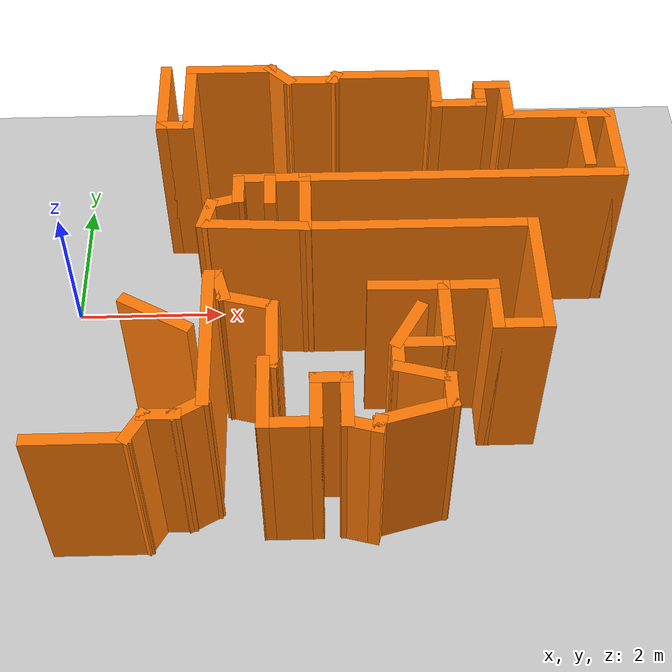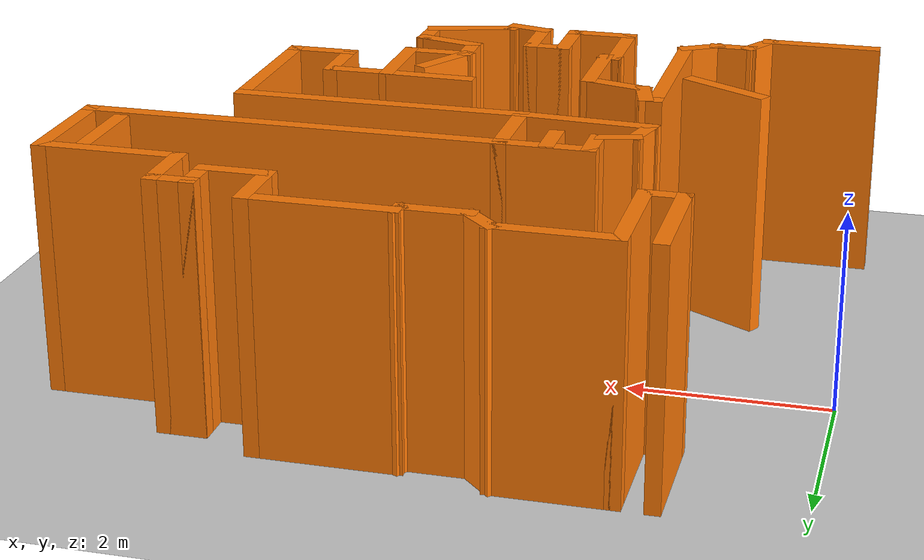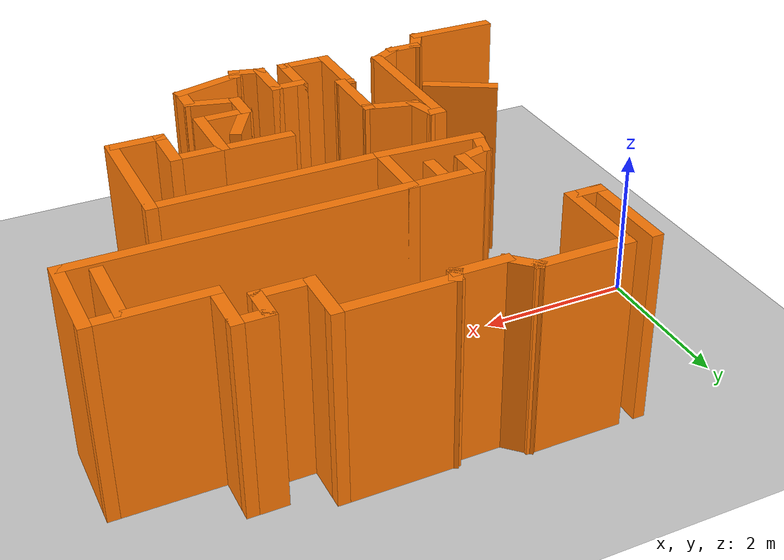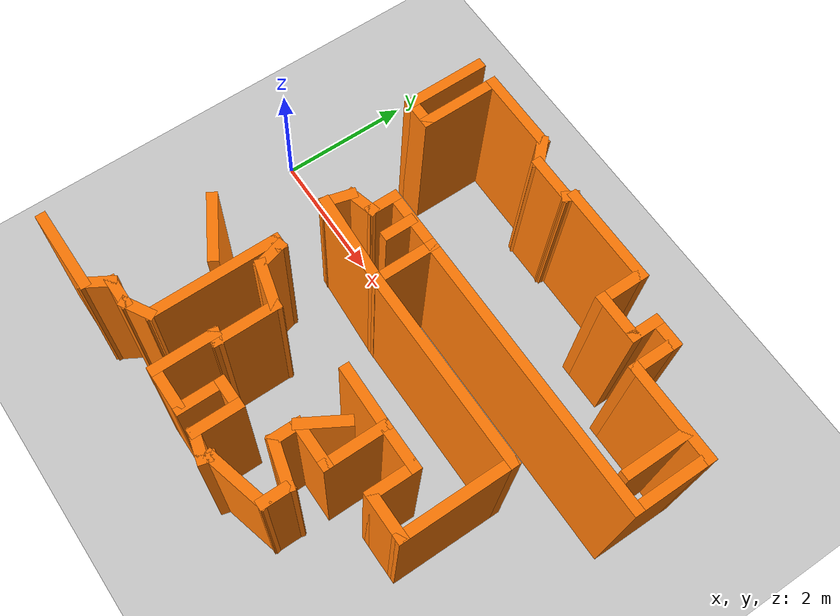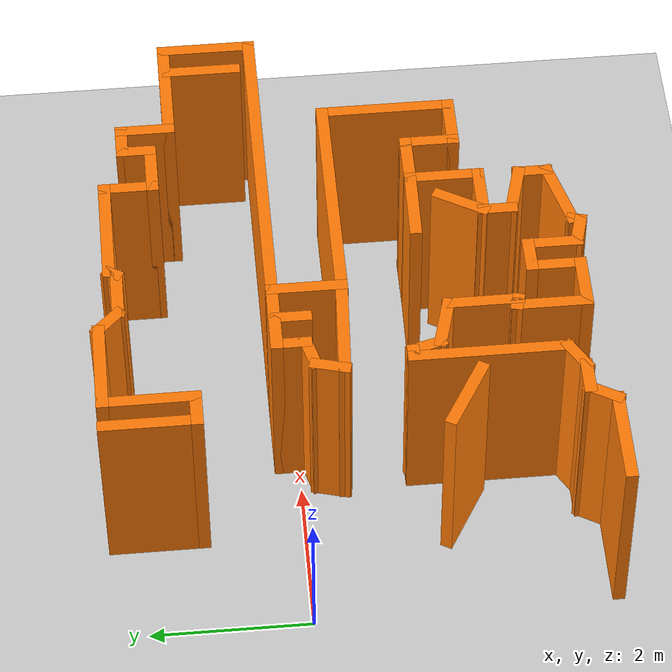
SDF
<sdf version="1.6">
 <world name="default">
  <model name="ground_plane">
   <static>1</static>
   <link name="link">
    <collision name="collision">
     <geometry><plane><normal>0 0 1</normal><size>100 100</size></plane></geometry>
     <surface>
      <contact><collide_bitmask>65535</collide_bitmask></contact>
      <friction><ode><mu>100</mu><mu2>50</mu2></ode></friction>
     </surface>
    </collision>
    <visual name="visual">
     <cast_shadows>0</cast_shadows>
     <geometry><plane><normal>0 0 1</normal><size>100 100</size></plane></geometry>
     <material>
      <script><uri>file://media/materials/scripts/gazebo.material</uri><name>Gazebo/Grey</name></script>
     </material>
    </visual>
   </link>
  </model>
  <model name="map_27">
   <pose>0.519139 -0.186386 0 0 -0 0</pose>
   <link name="Wall_100">
    <collision name="Wall_100_Collision">
     <geometry><box><size>0.75 0.15 2.5</size></box></geometry>
     <pose>0 0 1.25 0 -0 0</pose>
    </collision>
    <visual name="Wall_100_Visual">
     <pose>0 0 1.25 0 -0 0</pose>
     <geometry><box><size>0.75 0.15 2.5</size></box></geometry>
     <material>
      <script><uri>file://media/materials/scripts/gazebo.material</uri><name>Gazebo/Grey</name></script>
      <ambient>0.996078 0.47451 0.0196078 1</ambient>
     </material>
     <meta><layer>0</layer></meta>
    </visual>
    <pose>4.04514 -2.2771 0 0 -0 0</pose>
   </link>
   <link name="Wall_101">
    <collision name="Wall_101_Collision">
     <geometry><box><size>1 0.15 2.5</size></box></geometry>
     <pose>0 0 1.25 0 -0 0</pose>
    </collision>
    <visual name="Wall_101_Visual">
     <pose>0 0 1.25 0 -0 0</pose>
     <geometry><box><size>1 0.15 2.5</size></box></geometry>
     <material>
      <script><uri>file://media/materials/scripts/gazebo.material</uri><name>Gazebo/Grey</name></script>
      <ambient>0.996078 0.47451 0.0196078 1</ambient>
     </material>
     <meta><layer>0</layer></meta>
    </visual>
    <pose>4.34514 -1.8521 0 0 -0 1.5708</pose>
   </link>
   <link name="Wall_102">
    <collision name="Wall_102_Collision">
     <geometry><box><size>0.75 0.15 2.5</size></box></geometry>
     <pose>0 0 1.25 0 -0 0</pose>
    </collision>
    <visual name="Wall_102_Visual">
     <pose>0 0 1.25 0 -0 0</pose>
     <geometry><box><size>0.75 0.15 2.5</size></box></geometry>
     <material>
      <script><uri>file://media/materials/scripts/gazebo.material</uri><name>Gazebo/Grey</name></script>
      <ambient>0.996078 0.47451 0.0196078 1</ambient>
     </material>
     <meta><layer>0</layer></meta>
    </visual>
    <pose>4.64514 -1.4271 0 0 -0 0</pose>
   </link>
   <link name="Wall_103">
    <collision name="Wall_103_Collision">
     <geometry><box><size>0.75 0.15 2.5</size></box></geometry>
     <pose>0 0 1.25 0 -0 0</pose>
    </collision>
    <visual name="Wall_103_Visual">
     <pose>0 0 1.25 0 -0 0</pose>
     <geometry><box><size>0.75 0.15 2.5</size></box></geometry>
     <material>
      <script><uri>file://media/materials/scripts/gazebo.material</uri><name>Gazebo/Grey</name></script>
      <ambient>0.996078 0.47451 0.0196078 1</ambient>
     </material>
     <meta><layer>0</layer></meta>
    </visual>
    <pose>4.94514 -1.7271 0 0 -0 -1.5708</pose>
   </link>
   <link name="Wall_104">
    <collision name="Wall_104_Collision">
     <geometry><box><size>0.75 0.15 2.5</size></box></geometry>
     <pose>0 0 1.25 0 -0 0</pose>
    </collision>
    <visual name="Wall_104_Visual">
     <pose>0 0 1.25 0 -0 0</pose>
     <geometry><box><size>0.75 0.15 2.5</size></box></geometry>
     <material>
      <script><uri>file://media/materials/scripts/gazebo.material</uri><name>Gazebo/Grey</name></script>
      <ambient>0.996078 0.47451 0.0196078 1</ambient>
     </material>
     <meta><layer>0</layer></meta>
    </visual>
    <pose>5.24514 -2.0271 0 0 -0 0</pose>
   </link>
   <link name="Wall_105">
    <collision name="Wall_105_Collision">
     <geometry><box><size>1.75 0.15 2.5</size></box></geometry>
     <pose>0 0 1.25 0 -0 0</pose>
    </collision>
    <visual name="Wall_105_Visual">
     <pose>0 0 1.25 0 -0 0</pose>
     <geometry><box><size>1.75 0.15 2.5</size></box></geometry>
     <material>
      <script><uri>file://media/materials/scripts/gazebo.material</uri><name>Gazebo/Grey</name></script>
      <ambient>0.996078 0.47451 0.0196078 1</ambient>
     </material>
     <meta><layer>0</layer></meta>
    </visual>
    <pose>5.54514 -1.2271 0 0 -0 1.5708</pose>
   </link>
   <link name="Wall_106">
    <collision name="Wall_106_Collision">
     <geometry><box><size>3 0.15 2.5</size></box></geometry>
     <pose>0 0 1.25 0 -0 0</pose>
    </collision>
    <visual name="Wall_106_Visual">
     <pose>0 0 1.25 0 -0 0</pose>
     <geometry><box><size>3 0.15 2.5</size></box></geometry>
     <material>
      <script><uri>file://media/materials/scripts/gazebo.material</uri><name>Gazebo/Grey</name></script>
      <ambient>0.996078 0.47451 0.0196078 1</ambient>
     </material>
     <meta><layer>0</layer></meta>
    </visual>
    <pose>4.12014 -0.427096 0 0 -0 3.14159</pose>
   </link>
   <link name="Wall_107">
    <collision name="Wall_107_Collision">
     <geometry><box><size>1 0.15 2.5</size></box></geometry>
     <pose>0 0 1.25 0 -0 0</pose>
    </collision>
    <visual name="Wall_107_Visual">
     <pose>0 0 1.25 0 -0 0</pose>
     <geometry><box><size>1 0.15 2.5</size></box></geometry>
     <material>
      <script><uri>file://media/materials/scripts/gazebo.material</uri><name>Gazebo/Grey</name></script>
      <ambient>0.996078 0.47451 0.0196078 1</ambient>
     </material>
     <meta><layer>0</layer></meta>
    </visual>
    <pose>2.69514 -0.002096 0 0 -0 1.5708</pose>
   </link>
   <link name="Wall_108">
    <collision name="Wall_108_Collision">
     <geometry><box><size>4.25 0.15 2.5</size></box></geometry>
     <pose>0 0 1.25 0 -0 0</pose>
    </collision>
    <visual name="Wall_108_Visual">
     <pose>0 0 1.25 0 -0 0</pose>
     <geometry><box><size>4.25 0.15 2.5</size></box></geometry>
     <material>
      <script><uri>file://media/materials/scripts/gazebo.material</uri><name>Gazebo/Grey</name></script>
      <ambient>0.996078 0.47451 0.0196078 1</ambient>
     </material>
     <meta><layer>0</layer></meta>
    </visual>
    <pose>4.74514 0.422904 0 0 -0 0</pose>
   </link>
   <link name="Wall_109">
    <collision name="Wall_109_Collision">
     <geometry><box><size>1.25 0.15 2.5</size></box></geometry>
     <pose>0 0 1.25 0 -0 0</pose>
    </collision>
    <visual name="Wall_109_Visual">
     <pose>0 0 1.25 0 -0 0</pose>
     <geometry><box><size>1.25 0.15 2.5</size></box></geometry>
     <material>
      <script><uri>file://media/materials/scripts/gazebo.material</uri><name>Gazebo/Grey</name></script>
      <ambient>0.996078 0.47451 0.0196078 1</ambient>
     </material>
     <meta><layer>0</layer></meta>
    </visual>
    <pose>6.79514 0.972904 0 0 -0 1.5708</pose>
   </link>
   <link name="Wall_110">
    <collision name="Wall_110_Collision">
     <geometry><box><size>1.5 0.15 2.5</size></box></geometry>
     <pose>0 0 1.25 0 -0 0</pose>
    </collision>
    <visual name="Wall_110_Visual">
     <pose>0 0 1.25 0 -0 0</pose>
     <geometry><box><size>1.5 0.15 2.5</size></box></geometry>
     <material>
      <script><uri>file://media/materials/scripts/gazebo.material</uri><name>Gazebo/Grey</name></script>
      <ambient>0.996078 0.47451 0.0196078 1</ambient>
     </material>
     <meta><layer>0</layer></meta>
    </visual>
    <pose>6.12014 1.5229 0 0 -0 3.14159</pose>
   </link>
   <link name="Wall_111">
    <collision name="Wall_111_Collision">
     <geometry><box><size>0.75 0.15 2.5</size></box></geometry>
     <pose>0 0 1.25 0 -0 0</pose>
    </collision>
    <visual name="Wall_111_Visual">
     <pose>0 0 1.25 0 -0 0</pose>
     <geometry><box><size>0.75 0.15 2.5</size></box></geometry>
     <material>
      <script><uri>file://media/materials/scripts/gazebo.material</uri><name>Gazebo/Grey</name></script>
      <ambient>0.996078 0.47451 0.0196078 1</ambient>
     </material>
     <meta><layer>0</layer></meta>
    </visual>
    <pose>5.44514 1.8229 0 0 -0 1.5708</pose>
   </link>
   <link name="Wall_112">
    <collision name="Wall_112_Collision">
     <geometry><box><size>0.5 0.15 2.5</size></box></geometry>
     <pose>0 0 1.25 0 -0 0</pose>
    </collision>
    <visual name="Wall_112_Visual">
     <pose>0 0 1.25 0 -0 0</pose>
     <geometry><box><size>0.5 0.15 2.5</size></box></geometry>
     <material>
      <script><uri>file://media/materials/scripts/gazebo.material</uri><name>Gazebo/Grey</name></script>
      <ambient>0.996078 0.47451 0.0196078 1</ambient>
     </material>
     <meta><layer>0</layer></meta>
    </visual>
    <pose>5.27014 2.1229 0 0 -0 3.14159</pose>
   </link>
   <link name="Wall_113">
    <collision name="Wall_113_Collision">
     <geometry><box><size>0.5 0.15 2.5</size></box></geometry>
     <pose>0 0 1.25 0 -0 0</pose>
    </collision>
    <visual name="Wall_113_Visual">
     <pose>0 0 1.25 0 -0 0</pose>
     <geometry><box><size>0.5 0.15 2.5</size></box></geometry>
     <material>
      <script><uri>file://media/materials/scripts/gazebo.material</uri><name>Gazebo/Grey</name></script>
      <ambient>0.996078 0.47451 0.0196078 1</ambient>
     </material>
     <meta><layer>0</layer></meta>
    </visual>
    <pose>5.09514 1.9479 0 0 -0 -1.5708</pose>
   </link>
   <link name="Wall_114">
    <collision name="Wall_114_Collision">
     <geometry><box><size>0.75 0.15 2.5</size></box></geometry>
     <pose>0 0 1.25 0 -0 0</pose>
    </collision>
    <visual name="Wall_114_Visual">
     <pose>0 0 1.25 0 -0 0</pose>
     <geometry><box><size>0.75 0.15 2.5</size></box></geometry>
     <material>
      <script><uri>file://media/materials/scripts/gazebo.material</uri><name>Gazebo/Grey</name></script>
      <ambient>0.996078 0.47451 0.0196078 1</ambient>
     </material>
     <meta><layer>0</layer></meta>
    </visual>
    <pose>4.79514 1.7729 0 0 -0 3.14159</pose>
   </link>
   <link name="Wall_115">
    <collision name="Wall_115_Collision">
     <geometry><box><size>0.75 0.15 2.5</size></box></geometry>
     <pose>0 0 1.25 0 -0 0</pose>
    </collision>
    <visual name="Wall_115_Visual">
     <pose>0 0 1.25 0 -0 0</pose>
     <geometry><box><size>0.75 0.15 2.5</size></box></geometry>
     <material>
      <script><uri>file://media/materials/scripts/gazebo.material</uri><name>Gazebo/Grey</name></script>
      <ambient>0.996078 0.47451 0.0196078 1</ambient>
     </material>
     <meta><layer>0</layer></meta>
    </visual>
    <pose>4.49514 2.0729 0 0 -0 1.5708</pose>
   </link>
   <link name="Wall_116">
    <collision name="Wall_116_Collision">
     <geometry><box><size>1.5 0.15 2.5</size></box></geometry>
     <pose>0 0 1.25 0 -0 0</pose>
    </collision>
    <visual name="Wall_116_Visual">
     <pose>0 0 1.25 0 -0 0</pose>
     <geometry><box><size>1.5 0.15 2.5</size></box></geometry>
     <material>
      <script><uri>file://media/materials/scripts/gazebo.material</uri><name>Gazebo/Grey</name></script>
      <ambient>0.996078 0.47451 0.0196078 1</ambient>
     </material>
     <meta><layer>0</layer></meta>
    </visual>
    <pose>3.82014 2.3729 0 0 -0 3.14159</pose>
   </link>
   <link name="Wall_117">
    <collision name="Wall_117_Collision">
     <geometry><box><size>0.25 0.15 2.5</size></box></geometry>
     <pose>0 0 1.25 0 -0 0</pose>
    </collision>
    <visual name="Wall_117_Visual">
     <pose>0 0 1.25 0 -0 0</pose>
     <geometry><box><size>0.25 0.15 2.5</size></box></geometry>
     <material>
      <script><uri>file://media/materials/scripts/gazebo.material</uri><name>Gazebo/Grey</name></script>
      <ambient>0.996078 0.47451 0.0196078 1</ambient>
     </material>
     <meta><layer>0</layer></meta>
    </visual>
    <pose>3.12014 2.3296 0 0 -0 -2.0944</pose>
   </link>
   <link name="Wall_118">
    <collision name="Wall_118_Collision">
     <geometry><box><size>0.75 0.15 2.5</size></box></geometry>
     <pose>0 0 1.25 0 -0 0</pose>
    </collision>
    <visual name="Wall_118_Visual">
     <pose>0 0 1.25 0 -0 0</pose>
     <geometry><box><size>0.75 0.15 2.5</size></box></geometry>
     <material>
      <script><uri>file://media/materials/scripts/gazebo.material</uri><name>Gazebo/Grey</name></script>
      <ambient>0.996078 0.47451 0.0196078 1</ambient>
     </material>
     <meta><layer>0</layer></meta>
    </visual>
    <pose>2.79514 2.2863 0 0 -0 3.14159</pose>
   </link>
   <link name="Wall_119">
    <collision name="Wall_119_Collision">
     <geometry><box><size>0.5 0.15 2.5</size></box></geometry>
     <pose>0 0 1.25 0 -0 0</pose>
    </collision>
    <visual name="Wall_119_Visual">
     <pose>0 0 1.25 0 -0 0</pose>
     <geometry><box><size>0.5 0.15 2.5</size></box></geometry>
     <material>
      <script><uri>file://media/materials/scripts/gazebo.material</uri><name>Gazebo/Grey</name></script>
      <ambient>0.996078 0.47451 0.0196078 1</ambient>
     </material>
     <meta><layer>0</layer></meta>
    </visual>
    <pose>2.3714 2.41005 0 0 -0 2.35619</pose>
   </link>
   <link name="Wall_120">
    <collision name="Wall_120_Collision">
     <geometry><box><size>1.25 0.15 2.5</size></box></geometry>
     <pose>0 0 1.25 0 -0 0</pose>
    </collision>
    <visual name="Wall_120_Visual">
     <pose>0 0 1.25 0 -0 0</pose>
     <geometry><box><size>1.25 0.15 2.5</size></box></geometry>
     <material>
      <script><uri>file://media/materials/scripts/gazebo.material</uri><name>Gazebo/Grey</name></script>
      <ambient>0.996078 0.47451 0.0196078 1</ambient>
     </material>
     <meta><layer>0</layer></meta>
    </visual>
    <pose>1.69765 2.53379 0 0 -0 3.14159</pose>
   </link>
   <link name="Wall_121">
    <collision name="Wall_121_Collision">
     <geometry><box><size>1.25 0.15 2.5</size></box></geometry>
     <pose>0 0 1.25 0 -0 0</pose>
    </collision>
    <visual name="Wall_121_Visual">
     <pose>0 0 1.25 0 -0 0</pose>
     <geometry><box><size>1.25 0.15 2.5</size></box></geometry>
     <material>
      <script><uri>file://media/materials/scripts/gazebo.material</uri><name>Gazebo/Grey</name></script>
      <ambient>0.996078 0.47451 0.0196078 1</ambient>
     </material>
     <meta><layer>0</layer></meta>
    </visual>
    <pose>1.14766 1.98379 0 0 -0 -1.5708</pose>
   </link>
   <link name="Wall_122">
    <collision name="Wall_122_Collision">
     <geometry><box><size>0.5 0.15 2.5</size></box></geometry>
     <pose>0 0 1.25 0 -0 0</pose>
    </collision>
    <visual name="Wall_122_Visual">
     <pose>0 0 1.25 0 -0 0</pose>
     <geometry><box><size>0.5 0.15 2.5</size></box></geometry>
     <material>
      <script><uri>file://media/materials/scripts/gazebo.material</uri><name>Gazebo/Grey</name></script>
      <ambient>0.996078 0.47451 0.0196078 1</ambient>
     </material>
     <meta><layer>0</layer></meta>
    </visual>
    <pose>0.972655 1.43379 0 0 -0 3.14159</pose>
   </link>
   <link name="Wall_123">
    <collision name="Wall_123_Collision">
     <geometry><box><size>1.25 0.15 2.5</size></box></geometry>
     <pose>0 0 1.25 0 -0 0</pose>
    </collision>
    <visual name="Wall_123_Visual">
     <pose>0 0 1.25 0 -0 0</pose>
     <geometry><box><size>1.25 0.15 2.5</size></box></geometry>
     <material>
      <script><uri>file://media/materials/scripts/gazebo.material</uri><name>Gazebo/Grey</name></script>
      <ambient>0.996078 0.47451 0.0196078 1</ambient>
     </material>
     <meta><layer>0</layer></meta>
    </visual>
    <pose>0.797655 1.98379 0 0 -0 1.5708</pose>
   </link>
   <link name="Wall_135">
    <collision name="Wall_135_Collision">
     <geometry><box><size>1 0.15 2.5</size></box></geometry>
     <pose>0 0 1.25 0 -0 0</pose>
    </collision>
    <visual name="Wall_135_Visual">
     <pose>0 0 1.25 0 -0 0</pose>
     <geometry><box><size>1 0.15 2.5</size></box></geometry>
     <material>
      <script><uri>file://media/materials/scripts/gazebo.material</uri><name>Gazebo/Grey</name></script>
      <ambient>0.996078 0.47451 0.0196078 1</ambient>
     </material>
     <meta><layer>0</layer></meta>
    </visual>
    <pose>6.41297 1.05479 0 0 -0 -1.5708</pose>
   </link>
   <link name="Wall_138">
    <collision name="Wall_138_Collision">
     <geometry><box><size>1 0.15 2.5</size></box></geometry>
     <pose>0 0 1.25 0 -0 0</pose>
    </collision>
    <visual name="Wall_138_Visual">
     <pose>0 0 1.25 0 -0 0</pose>
     <geometry><box><size>1 0.15 2.5</size></box></geometry>
     <material>
      <script><uri>file://media/materials/scripts/gazebo.material</uri><name>Gazebo/Grey</name></script>
      <ambient>0.996078 0.47451 0.0196078 1</ambient>
     </material>
     <meta><layer>0</layer></meta>
    </visual>
    <pose>0.905858 -1.76282 0 0 -0 -0.523599</pose>
   </link>
   <link name="Wall_141">
    <collision name="Wall_141_Collision">
     <geometry><box><size>0.99677 0.15 2.5</size></box></geometry>
     <pose>0 0 1.25 0 -0 0</pose>
    </collision>
    <visual name="Wall_141_Visual">
     <pose>0 0 1.25 0 -0 0</pose>
     <geometry><box><size>0.99677 0.15 2.5</size></box></geometry>
     <material>
      <script><uri>file://media/materials/scripts/gazebo.material</uri><name>Gazebo/Grey</name></script>
      <ambient>0.996078 0.47451 0.0196078 1</ambient>
     </material>
     <meta><layer>0</layer></meta>
    </visual>
    <pose>3.92183 -1.41932 0 0 -0 -0.018375</pose>
   </link>
   <link name="Wall_143">
    <collision name="Wall_143_Collision">
     <geometry><box><size>0.75 0.15 2.5</size></box></geometry>
     <pose>0 0 1.25 0 -0 0</pose>
    </collision>
    <visual name="Wall_143_Visual">
     <pose>0 0 1.25 0 -0 0</pose>
     <geometry><box><size>0.75 0.15 2.5</size></box></geometry>
     <material>
      <script><uri>file://media/materials/scripts/gazebo.material</uri><name>Gazebo/Grey</name></script>
      <ambient>0.996078 0.47451 0.0196078 1</ambient>
     </material>
     <meta><layer>0</layer></meta>
    </visual>
    <pose>3.89514 -2.01729 0 0 -0 1.0472</pose>
   </link>
   <link name="Wall_167">
    <collision name="Wall_167_Collision">
     <geometry><box><size>1 0.15 2.5</size></box></geometry>
     <pose>0 0 1.25 0 -0 0</pose>
    </collision>
    <visual name="Wall_167_Visual">
     <pose>0 0 1.25 0 -0 0</pose>
     <geometry><box><size>1 0.15 2.5</size></box></geometry>
     <material>
      <script><uri>file://media/materials/scripts/gazebo.material</uri><name>Gazebo/Grey</name></script>
      <ambient>0.996078 0.47451 0.0196078 1</ambient>
     </material>
     <meta><layer>0</layer></meta>
    </visual>
    <pose>2.27014 0.422904 0 0 -0 3.14159</pose>
   </link>
   <link name="Wall_168">
    <collision name="Wall_168_Collision">
     <geometry><box><size>0.5 0.15 2.5</size></box></geometry>
     <pose>0 0 1.25 0 -0 0</pose>
    </collision>
    <visual name="Wall_168_Visual">
     <pose>0 0 1.25 0 -0 0</pose>
     <geometry><box><size>0.5 0.15 2.5</size></box></geometry>
     <material>
      <script><uri>file://media/materials/scripts/gazebo.material</uri><name>Gazebo/Grey</name></script>
      <ambient>0.996078 0.47451 0.0196078 1</ambient>
     </material>
     <meta><layer>0</layer></meta>
    </visual>
    <pose>1.84514 0.247904 0 0 -0 -1.5708</pose>
   </link>
   <link name="Wall_169">
    <collision name="Wall_169_Collision">
     <geometry><box><size>0.5 0.15 2.5</size></box></geometry>
     <pose>0 0 1.25 0 -0 0</pose>
    </collision>
    <visual name="Wall_169_Visual">
     <pose>0 0 1.25 0 -0 0</pose>
     <geometry><box><size>0.5 0.15 2.5</size></box></geometry>
     <material>
      <script><uri>file://media/materials/scripts/gazebo.material</uri><name>Gazebo/Grey</name></script>
      <ambient>0.996078 0.47451 0.0196078 1</ambient>
     </material>
     <meta><layer>0</layer></meta>
    </visual>
    <pose>1.6761 0.027611 0 0 -0 -2.87979</pose>
   </link>
   <link name="Wall_170">
    <collision name="Wall_170_Collision">
     <geometry><box><size>0.5 0.15 2.5</size></box></geometry>
     <pose>0 0 1.25 0 -0 0</pose>
    </collision>
    <visual name="Wall_170_Visual">
     <pose>0 0 1.25 0 -0 0</pose>
     <geometry><box><size>0.5 0.15 2.5</size></box></geometry>
     <material>
      <script><uri>file://media/materials/scripts/gazebo.material</uri><name>Gazebo/Grey</name></script>
      <ambient>0.996078 0.47451 0.0196078 1</ambient>
     </material>
     <meta><layer>0</layer></meta>
    </visual>
    <pose>1.46178 -0.18672 0 0 -0 -1.8326</pose>
   </link>
   <link name="Wall_171">
    <collision name="Wall_171_Collision">
     <geometry><box><size>1.43065 0.15 2.5</size></box></geometry>
     <pose>0 0 1.25 0 -0 0</pose>
    </collision>
    <visual name="Wall_171_Visual">
     <pose>0 0 1.25 0 -0 0</pose>
     <geometry><box><size>1.43065 0.15 2.5</size></box></geometry>
     <material>
      <script><uri>file://media/materials/scripts/gazebo.material</uri><name>Gazebo/Grey</name></script>
      <ambient>0.996078 0.47451 0.0196078 1</ambient>
     </material>
     <meta><layer>0</layer></meta>
    </visual>
    <pose>2.05581 -0.391426 0 0 -0 -0.055734</pose>
   </link>
   <link name="Wall_175">
    <collision name="Wall_175_Collision">
     <geometry><box><size>0.5 0.15 2.5</size></box></geometry>
     <pose>0 0 1.25 0 -0 0</pose>
    </collision>
    <visual name="Wall_175_Visual">
     <pose>0 0 1.25 0 -0 0</pose>
     <geometry><box><size>0.5 0.15 2.5</size></box></geometry>
     <material>
      <script><uri>file://media/materials/scripts/gazebo.material</uri><name>Gazebo/Grey</name></script>
      <ambient>0.996078 0.47451 0.0196078 1</ambient>
     </material>
     <meta><layer>0</layer></meta>
    </visual>
    <pose>2.24946 0.21765 0 0 -0 -1.5708</pose>
   </link>
   <link name="Wall_77">
    <collision name="Wall_77_Collision">
     <geometry><box><size>1.25 0.15 2.5</size></box></geometry>
     <pose>0 0 1.25 0 -0 0</pose>
    </collision>
    <visual name="Wall_77_Visual">
     <pose>0 0 1.25 0 -0 0</pose>
     <geometry><box><size>1.25 0.15 2.5</size></box></geometry>
     <material>
      <script><uri>file://media/materials/scripts/gazebo.material</uri><name>Gazebo/Grey</name></script>
      <ambient>0.996078 0.47451 0.0196078 1</ambient>
     </material>
     <meta><layer>0</layer></meta>
    </visual>
    <pose>0.138047 -3.51902 0 0 -0 0</pose>
   </link>
   <link name="Wall_78">
    <collision name="Wall_78_Collision">
     <geometry><box><size>0.5 0.15 2.5</size></box></geometry>
     <pose>0 0 1.25 0 -0 0</pose>
    </collision>
    <visual name="Wall_78_Visual">
     <pose>0 0 1.25 0 -0 0</pose>
     <geometry><box><size>0.5 0.15 2.5</size></box></geometry>
     <material>
      <script><uri>file://media/materials/scripts/gazebo.material</uri><name>Gazebo/Grey</name></script>
      <ambient>0.996078 0.47451 0.0196078 1</ambient>
     </material>
     <meta><layer>0</layer></meta>
    </visual>
    <pose>0.775547 -3.36746 0 0 -0 1.0472</pose>
   </link>
   <link name="Wall_79">
    <collision name="Wall_79_Collision">
     <geometry><box><size>0.5 0.15 2.5</size></box></geometry>
     <pose>0 0 1.25 0 -0 0</pose>
    </collision>
    <visual name="Wall_79_Visual">
     <pose>0 0 1.25 0 -0 0</pose>
     <geometry><box><size>0.5 0.15 2.5</size></box></geometry>
     <material>
      <script><uri>file://media/materials/scripts/gazebo.material</uri><name>Gazebo/Grey</name></script>
      <ambient>0.996078 0.47451 0.0196078 1</ambient>
     </material>
     <meta><layer>0</layer></meta>
    </visual>
    <pose>1.03805 -3.21591 0 0 -0 0</pose>
   </link>
   <link name="Wall_80">
    <collision name="Wall_80_Collision">
     <geometry><box><size>0.5 0.15 2.5</size></box></geometry>
     <pose>0 0 1.25 0 -0 0</pose>
    </collision>
    <visual name="Wall_80_Visual">
     <pose>0 0 1.25 0 -0 0</pose>
     <geometry><box><size>0.5 0.15 2.5</size></box></geometry>
     <material>
      <script><uri>file://media/materials/scripts/gazebo.material</uri><name>Gazebo/Grey</name></script>
      <ambient>0.996078 0.47451 0.0196078 1</ambient>
     </material>
     <meta><layer>0</layer></meta>
    </visual>
    <pose>1.3646 -3.12841 0 0 -0 0.523599</pose>
   </link>
   <link name="Wall_83">
    <collision name="Wall_83_Collision">
     <geometry><box><size>2 0.15 2.5</size></box></geometry>
     <pose>0 0 1.25 0 -0 0</pose>
    </collision>
    <visual name="Wall_83_Visual">
     <pose>0 0 1.25 0 -0 0</pose>
     <geometry><box><size>2 0.15 2.5</size></box></geometry>
     <material>
      <script><uri>file://media/materials/scripts/gazebo.material</uri><name>Gazebo/Grey</name></script>
      <ambient>0.996078 0.47451 0.0196078 1</ambient>
     </material>
     <meta><layer>0</layer></meta>
    </visual>
    <pose>1.51616 -2.11591 0 0 -0 1.5708</pose>
   </link>
   <link name="Wall_84">
    <collision name="Wall_84_Collision">
     <geometry><box><size>0.25 0.15 2.5</size></box></geometry>
     <pose>0 0 1.25 0 -0 0</pose>
    </collision>
    <visual name="Wall_84_Visual">
     <pose>0 0 1.25 0 -0 0</pose>
     <geometry><box><size>0.25 0.15 2.5</size></box></geometry>
     <material>
      <script><uri>file://media/materials/scripts/gazebo.material</uri><name>Gazebo/Grey</name></script>
      <ambient>0.996078 0.47451 0.0196078 1</ambient>
     </material>
     <meta><layer>0</layer></meta>
    </visual>
    <pose>1.56616 -1.19091 0 0 -0 0</pose>
   </link>
   <link name="Wall_85">
    <collision name="Wall_85_Collision">
     <geometry><box><size>0.5 0.15 2.5</size></box></geometry>
     <pose>0 0 1.25 0 -0 0</pose>
    </collision>
    <visual name="Wall_85_Visual">
     <pose>0 0 1.25 0 -0 0</pose>
     <geometry><box><size>0.5 0.15 2.5</size></box></geometry>
     <material>
      <script><uri>file://media/materials/scripts/gazebo.material</uri><name>Gazebo/Grey</name></script>
      <ambient>0.996078 0.47451 0.0196078 1</ambient>
     </material>
     <meta><layer>0</layer></meta>
    </visual>
    <pose>1.66145 -1.35994 0 0 -0 -1.309</pose>
   </link>
   <link name="Wall_86">
    <collision name="Wall_86_Collision">
     <geometry><box><size>0.75 0.15 2.5</size></box></geometry>
     <pose>0 0 1.25 0 -0 0</pose>
    </collision>
    <visual name="Wall_86_Visual">
     <pose>0 0 1.25 0 -0 0</pose>
     <geometry><box><size>0.75 0.15 2.5</size></box></geometry>
     <material>
      <script><uri>file://media/materials/scripts/gazebo.material</uri><name>Gazebo/Grey</name></script>
      <ambient>0.996078 0.47451 0.0196078 1</ambient>
     </material>
     <meta><layer>0</layer></meta>
    </visual>
    <pose>1.99652 -1.60663 0 0 -0 -0.261799</pose>
   </link>
   <link name="Wall_87">
    <collision name="Wall_87_Collision">
     <geometry><box><size>1 0.15 2.5</size></box></geometry>
     <pose>0 0 1.25 0 -0 0</pose>
    </collision>
    <visual name="Wall_87_Visual">
     <pose>0 0 1.25 0 -0 0</pose>
     <geometry><box><size>1 0.15 2.5</size></box></geometry>
     <material>
      <script><uri>file://media/materials/scripts/gazebo.material</uri><name>Gazebo/Grey</name></script>
      <ambient>0.996078 0.47451 0.0196078 1</ambient>
     </material>
     <meta><layer>0</layer></meta>
    </visual>
    <pose>2.2863 -2.10927 0 0 -0 -1.5708</pose>
   </link>
   <link name="Wall_88">
    <collision name="Wall_88_Collision">
     <geometry><box><size>0.25 0.15 2.5</size></box></geometry>
     <pose>0 0 1.25 0 -0 0</pose>
    </collision>
    <visual name="Wall_88_Visual">
     <pose>0 0 1.25 0 -0 0</pose>
     <geometry><box><size>0.25 0.15 2.5</size></box></geometry>
     <material>
      <script><uri>file://media/materials/scripts/gazebo.material</uri><name>Gazebo/Grey</name></script>
      <ambient>0.996078 0.47451 0.0196078 1</ambient>
     </material>
     <meta><layer>0</layer></meta>
    </visual>
    <pose>2.238 -2.52133 0 0 -0 2.87979</pose>
   </link>
   <link name="Wall_89">
    <collision name="Wall_89_Collision">
     <geometry><box><size>1 0.15 2.5</size></box></geometry>
     <pose>0 0 1.25 0 -0 0</pose>
    </collision>
    <visual name="Wall_89_Visual">
     <pose>0 0 1.25 0 -0 0</pose>
     <geometry><box><size>1 0.15 2.5</size></box></geometry>
     <material>
      <script><uri>file://media/materials/scripts/gazebo.material</uri><name>Gazebo/Grey</name></script>
      <ambient>0.996078 0.47451 0.0196078 1</ambient>
     </material>
     <meta><layer>0</layer></meta>
    </visual>
    <pose>2.18971 -2.93339 0 0 -0 -1.5708</pose>
   </link>
   <link name="Wall_90">
    <collision name="Wall_90_Collision">
     <geometry><box><size>0.75 0.15 2.5</size></box></geometry>
     <pose>0 0 1.25 0 -0 0</pose>
    </collision>
    <visual name="Wall_90_Visual">
     <pose>0 0 1.25 0 -0 0</pose>
     <geometry><box><size>0.75 0.15 2.5</size></box></geometry>
     <material>
      <script><uri>file://media/materials/scripts/gazebo.material</uri><name>Gazebo/Grey</name></script>
      <ambient>0.996078 0.47451 0.0196078 1</ambient>
     </material>
     <meta><layer>0</layer></meta>
    </visual>
    <pose>2.4897 -3.35839 0 0 -0 0</pose>
   </link>
   <link name="Wall_91">
    <collision name="Wall_91_Collision">
     <geometry><box><size>0.75 0.15 2.5</size></box></geometry>
     <pose>0 0 1.25 0 -0 0</pose>
    </collision>
    <visual name="Wall_91_Visual">
     <pose>0 0 1.25 0 -0 0</pose>
     <geometry><box><size>0.75 0.15 2.5</size></box></geometry>
     <material>
      <script><uri>file://media/materials/scripts/gazebo.material</uri><name>Gazebo/Grey</name></script>
      <ambient>0.996078 0.47451 0.0196078 1</ambient>
     </material>
     <meta><layer>0</layer></meta>
    </visual>
    <pose>2.78971 -3.05839 0 0 -0 1.5708</pose>
   </link>
   <link name="Wall_92">
    <collision name="Wall_92_Collision">
     <geometry><box><size>0.5 0.15 2.5</size></box></geometry>
     <pose>0 0 1.25 0 -0 0</pose>
    </collision>
    <visual name="Wall_92_Visual">
     <pose>0 0 1.25 0 -0 0</pose>
     <geometry><box><size>0.5 0.15 2.5</size></box></geometry>
     <material>
      <script><uri>file://media/materials/scripts/gazebo.material</uri><name>Gazebo/Grey</name></script>
      <ambient>0.996078 0.47451 0.0196078 1</ambient>
     </material>
     <meta><layer>0</layer></meta>
    </visual>
    <pose>2.9647 -2.75839 0 0 -0 0</pose>
   </link>
   <link name="Wall_93">
    <collision name="Wall_93_Collision">
     <geometry><box><size>0.75 0.15 2.5</size></box></geometry>
     <pose>0 0 1.25 0 -0 0</pose>
    </collision>
    <visual name="Wall_93_Visual">
     <pose>0 0 1.25 0 -0 0</pose>
     <geometry><box><size>0.75 0.15 2.5</size></box></geometry>
     <material>
      <script><uri>file://media/materials/scripts/gazebo.material</uri><name>Gazebo/Grey</name></script>
      <ambient>0.996078 0.47451 0.0196078 1</ambient>
     </material>
     <meta><layer>0</layer></meta>
    </visual>
    <pose>3.13971 -3.05839 0 0 -0 -1.5708</pose>
   </link>
   <link name="Wall_94">
    <collision name="Wall_94_Collision">
     <geometry><box><size>0.5 0.15 2.5</size></box></geometry>
     <pose>0 0 1.25 0 -0 0</pose>
    </collision>
    <visual name="Wall_94_Visual">
     <pose>0 0 1.25 0 -0 0</pose>
     <geometry><box><size>0.5 0.15 2.5</size></box></geometry>
     <material>
      <script><uri>file://media/materials/scripts/gazebo.material</uri><name>Gazebo/Grey</name></script>
      <ambient>0.996078 0.47451 0.0196078 1</ambient>
     </material>
     <meta><layer>0</layer></meta>
    </visual>
    <pose>3.30874 -3.40368 0 0 -0 -0.261799</pose>
   </link>
   <link name="Wall_95">
    <collision name="Wall_95_Collision">
     <geometry><box><size>0.25 0.15 2.5</size></box></geometry>
     <pose>0 0 1.25 0 -0 0</pose>
    </collision>
    <visual name="Wall_95_Visual">
     <pose>0 0 1.25 0 -0 0</pose>
     <geometry><box><size>0.25 0.15 2.5</size></box></geometry>
     <material>
      <script><uri>file://media/materials/scripts/gazebo.material</uri><name>Gazebo/Grey</name></script>
      <ambient>0.996078 0.47451 0.0196078 1</ambient>
     </material>
     <meta><layer>0</layer></meta>
    </visual>
    <pose>3.49072 -3.40068 0 0 -0 1.309</pose>
   </link>
   <link name="Wall_96">
    <collision name="Wall_96_Collision">
     <geometry><box><size>1 0.15 2.5</size></box></geometry>
     <pose>0 0 1.25 0 -0 0</pose>
    </collision>
    <visual name="Wall_96_Visual">
     <pose>0 0 1.25 0 -0 0</pose>
     <geometry><box><size>1 0.15 2.5</size></box></geometry>
     <material>
      <script><uri>file://media/materials/scripts/gazebo.material</uri><name>Gazebo/Grey</name></script>
      <ambient>0.996078 0.47451 0.0196078 1</ambient>
     </material>
     <meta><layer>0</layer></meta>
    </visual>
    <pose>3.91418 -3.24239 0 0 -0 0.261799</pose>
   </link>
   <link name="Wall_97">
    <collision name="Wall_97_Collision">
     <geometry><box><size>0.5 0.15 2.5</size></box></geometry>
     <pose>0 0 1.25 0 -0 0</pose>
    </collision>
    <visual name="Wall_97_Visual">
     <pose>0 0 1.25 0 -0 0</pose>
     <geometry><box><size>0.5 0.15 2.5</size></box></geometry>
     <material>
      <script><uri>file://media/materials/scripts/gazebo.material</uri><name>Gazebo/Grey</name></script>
      <ambient>0.996078 0.47451 0.0196078 1</ambient>
     </material>
     <meta><layer>0</layer></meta>
    </visual>
    <pose>4.3247 -2.95739 0 0 -0 1.5708</pose>
   </link>
   <link name="Wall_98">
    <collision name="Wall_98_Collision">
     <geometry><box><size>0.75 0.15 2.5</size></box></geometry>
     <pose>0 0 1.25 0 -0 0</pose>
    </collision>
    <visual name="Wall_98_Visual">
     <pose>0 0 1.25 0 -0 0</pose>
     <geometry><box><size>0.75 0.15 2.5</size></box></geometry>
     <material>
      <script><uri>file://media/materials/scripts/gazebo.material</uri><name>Gazebo/Grey</name></script>
      <ambient>0.996078 0.47451 0.0196078 1</ambient>
     </material>
     <meta><layer>0</layer></meta>
    </visual>
    <pose>4.03492 -2.70474 0 0 -0 2.87979</pose>
   </link>
   <link name="Wall_99">
    <collision name="Wall_99_Collision">
     <geometry><box><size>0.5 0.15 2.5</size></box></geometry>
     <pose>0 0 1.25 0 -0 0</pose>
    </collision>
    <visual name="Wall_99_Visual">
     <pose>0 0 1.25 0 -0 0</pose>
     <geometry><box><size>0.5 0.15 2.5</size></box></geometry>
     <material>
      <script><uri>file://media/materials/scripts/gazebo.material</uri><name>Gazebo/Grey</name></script>
      <ambient>0.996078 0.47451 0.0196078 1</ambient>
     </material>
     <meta><layer>0</layer></meta>
    </visual>
    <pose>3.74514 -2.4521 0 0 -0 1.5708</pose>
   </link>
   <static>1</static>
  </model>
 </world>
</sdf>
